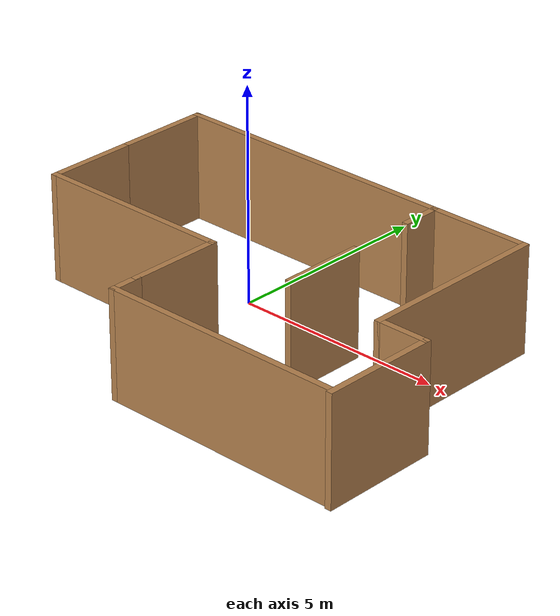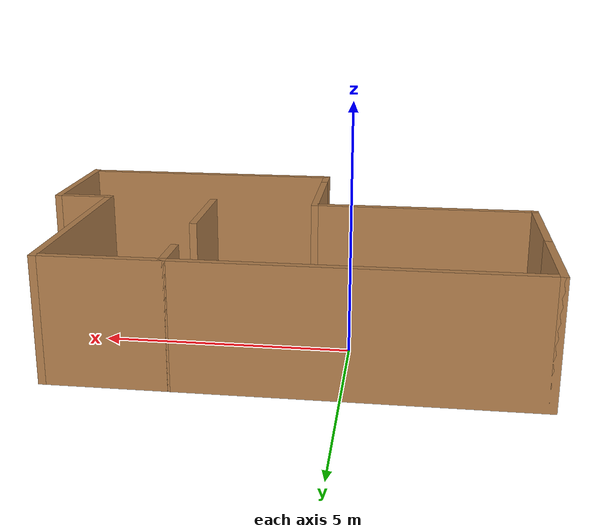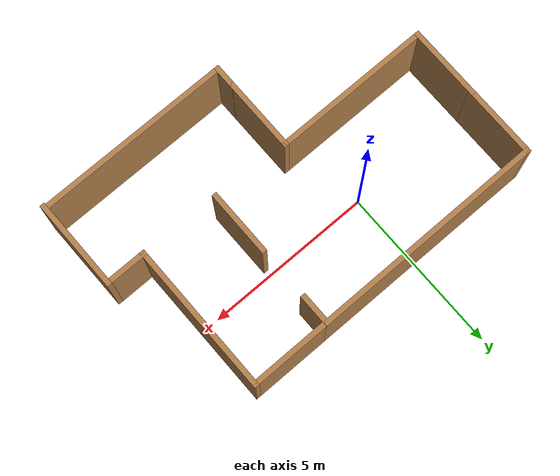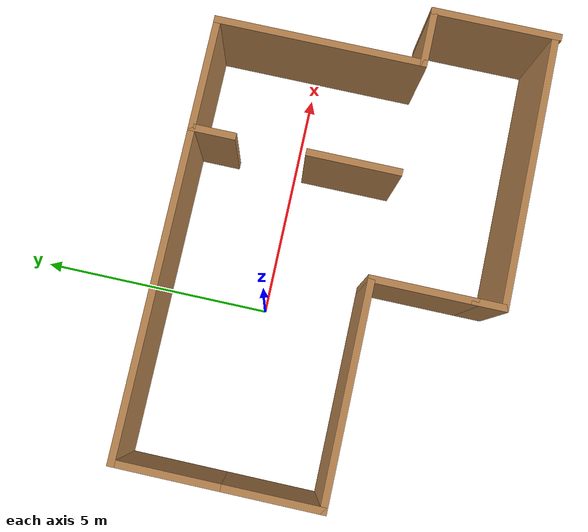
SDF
<?xml version='1.0'?>
<sdf version='1.6'>
  <model name='house'>
    <pose frame=''>1.485 -1.255 0 0 -0 0</pose>
    <link name='Wall_0'>
      <collision name='Wall_0_Collision'>
        <geometry>
          <box>
            <size>4.75 0.15 2.5</size>
          </box>
        </geometry>
        <pose frame=''>0 0 1.25 0 -0 0</pose>
      </collision>
      <visual name='Wall_0_Visual'>
        <pose frame=''>0 0 1.25 0 -0 0</pose>
        <geometry>
          <box>
            <size>4.75 0.15 2.5</size>
          </box>
        </geometry>
        <material>
          <script>
            <uri>file://media/materials/scripts/gazebo.material</uri>
            <name>Gazebo/Wood</name>
          </script>
          <ambient>1 1 1 1</ambient>
        </material>
        <meta>
          <layer>0</layer>
        </meta>
      </visual>
      <pose frame=''>-2.875 -0.725 0 0 -0 3.14159</pose>
    </link>
    <link name='Wall_1'>
      <collision name='Wall_1_Collision'>
        <geometry>
          <box>
            <size>2.25 0.15 2.5</size>
          </box>
        </geometry>
        <pose frame=''>0 0 1.25 0 -0 0</pose>
      </collision>
      <visual name='Wall_1_Visual'>
        <pose frame=''>0 0 1.25 0 -0 0</pose>
        <geometry>
          <box>
            <size>2.25 0.15 2.5</size>
          </box>
        </geometry>
        <material>
          <script>
            <uri>file://media/materials/scripts/gazebo.material</uri>
            <name>Gazebo/Wood</name>
          </script>
          <ambient>1 1 1 1</ambient>
        </material>
        <meta>
          <layer>0</layer>
        </meta>
      </visual>
      <pose frame=''>-5.175 0.325 0 0 -0 1.5708</pose>
    </link>
    <link name='Wall_16'>
      <collision name='Wall_16_Collision'>
        <geometry>
          <box>
            <size>2 0.15 2.5</size>
          </box>
        </geometry>
        <pose frame=''>0 0 1.25 0 -0 0</pose>
      </collision>
      <visual name='Wall_16_Visual'>
        <pose frame=''>0 0 1.25 0 -0 0</pose>
        <geometry>
          <box>
            <size>2 0.15 2.5</size>
          </box>
        </geometry>
        <material>
          <script>
            <uri>file://media/materials/scripts/gazebo.material</uri>
            <name>Gazebo/Wood</name>
          </script>
          <ambient>1 1 1 1</ambient>
        </material>
        <meta>
          <layer>0</layer>
        </meta>
      </visual>
      <pose frame=''>1.67473 0.096676 0 0 -0 -1.5708</pose>
    </link>
    <link name='Wall_18'>
      <collision name='Wall_18_Collision'>
        <geometry>
          <box>
            <size>2.25 0.15 2.5</size>
          </box>
        </geometry>
        <pose frame=''>0 0 1.25 0 -0 0</pose>
      </collision>
      <visual name='Wall_18_Visual'>
        <pose frame=''>0 0 1.25 0 -0 0</pose>
        <geometry>
          <box>
            <size>2.25 0.15 2.5</size>
          </box>
        </geometry>
        <material>
          <script>
            <uri>file://media/materials/scripts/gazebo.material</uri>
            <name>Gazebo/Wood</name>
          </script>
          <ambient>1 1 1 1</ambient>
        </material>
        <meta>
          <layer>0</layer>
        </meta>
      </visual>
      <pose frame=''>-0.575 -1.775 0 0 -0 -1.5708</pose>
    </link>
    <link name='Wall_20'>
      <collision name='Wall_20_Collision'>
        <geometry>
          <box>
            <size>0.75 0.15 2.5</size>
          </box>
        </geometry>
        <pose frame=''>0 0 1.25 0 -0 0</pose>
      </collision>
      <visual name='Wall_20_Visual'>
        <pose frame=''>0 0 1.25 0 -0 0</pose>
        <geometry>
          <box>
            <size>0.75 0.15 2.5</size>
          </box>
        </geometry>
        <material>
          <script>
            <uri>file://media/materials/scripts/gazebo.material</uri>
            <name>Gazebo/Wood</name>
          </script>
          <ambient>1 1 1 1</ambient>
        </material>
        <meta>
          <layer>0</layer>
        </meta>
      </visual>
      <pose frame=''>-0.575 -3.125 0 0 -0 -1.5708</pose>
    </link>
    <link name='Wall_21'>
      <collision name='Wall_21_Collision'>
        <geometry>
          <box>
            <size>5.75 0.15 2.5</size>
          </box>
        </geometry>
        <pose frame=''>0 0 1.25 0 -0 0</pose>
      </collision>
      <visual name='Wall_21_Visual'>
        <pose frame=''>0 0 1.25 0 -0 0</pose>
        <geometry>
          <box>
            <size>5.75 0.15 2.5</size>
          </box>
        </geometry>
        <material>
          <script>
            <uri>file://media/materials/scripts/gazebo.material</uri>
            <name>Gazebo/Wood</name>
          </script>
          <ambient>1 1 1 1</ambient>
        </material>
        <meta>
          <layer>0</layer>
        </meta>
      </visual>
      <pose frame=''>2.225 -3.425 0 0 -0 0</pose>
    </link>
    <link name='Wall_23'>
      <collision name='Wall_23_Collision'>
        <geometry>
          <box>
            <size>2.75 0.15 2.5</size>
          </box>
        </geometry>
        <pose frame=''>0 0 1.25 0 -0 0</pose>
      </collision>
      <visual name='Wall_23_Visual'>
        <pose frame=''>0 0 1.25 0 -0 0</pose>
        <geometry>
          <box>
            <size>2.75 0.15 2.5</size>
          </box>
        </geometry>
        <material>
          <script>
            <uri>file://media/materials/scripts/gazebo.material</uri>
            <name>Gazebo/Wood</name>
          </script>
          <ambient>1 1 1 1</ambient>
        </material>
        <meta>
          <layer>0</layer>
        </meta>
      </visual>
      <pose frame=''>5.175 -2.175 0 0 -0 -1.5708</pose>
    </link>
    <link name='Wall_28'>
      <collision name='Wall_28_Collision'>
        <geometry>
          <box>
            <size>2.5 0.15 2.5</size>
          </box>
        </geometry>
        <pose frame=''>0 0 1.25 0 -0 0</pose>
      </collision>
      <visual name='Wall_28_Visual'>
        <pose frame=''>0 0 1.25 0 -0 0</pose>
        <geometry>
          <box>
            <size>2.5 0.15 2.5</size>
          </box>
        </geometry>
        <material>
          <script>
            <uri>file://media/materials/scripts/gazebo.material</uri>
            <name>Gazebo/Wood</name>
          </script>
          <ambient>1 1 1 1</ambient>
        </material>
        <meta>
          <layer>0</layer>
        </meta>
      </visual>
      <pose frame=''>2.85 3.475 0 0 -0 0</pose>
    </link>
    <link name='Wall_29'>
      <collision name='Wall_29_Collision'>
        <geometry>
          <box>
            <size>4.5 0.15 2.5</size>
          </box>
        </geometry>
        <pose frame=''>0 0 1.25 0 -0 0</pose>
      </collision>
      <visual name='Wall_29_Visual'>
        <pose frame=''>0 0 1.25 0 -0 0</pose>
        <geometry>
          <box>
            <size>4.5 0.15 2.5</size>
          </box>
        </geometry>
        <material>
          <script>
            <uri>file://media/materials/scripts/gazebo.material</uri>
            <name>Gazebo/Wood</name>
          </script>
          <ambient>1 1 1 1</ambient>
        </material>
        <meta>
          <layer>0</layer>
        </meta>
      </visual>
      <pose frame=''>4.025 1.3 0 0 -0 -1.5708</pose>
    </link>
    <link name='Wall_30'>
      <collision name='Wall_30_Collision'>
        <geometry>
          <box>
            <size>1.3 0.15 2.5</size>
          </box>
        </geometry>
        <pose frame=''>0 0 1.25 0 -0 0</pose>
      </collision>
      <visual name='Wall_30_Visual'>
        <pose frame=''>0 0 1.25 0 -0 0</pose>
        <geometry>
          <box>
            <size>1.3 0.15 2.5</size>
          </box>
        </geometry>
        <material>
          <script>
            <uri>file://media/materials/scripts/gazebo.material</uri>
            <name>Gazebo/Wood</name>
          </script>
          <ambient>1 1 1 1</ambient>
        </material>
        <meta>
          <layer>0</layer>
        </meta>
      </visual>
      <pose frame=''>4.6 -0.875 0 0 -0 0</pose>
    </link>
    <link name='Wall_5'>
      <collision name='Wall_5_Collision'>
        <geometry>
          <box>
            <size>2.25 0.15 2.5</size>
          </box>
        </geometry>
        <pose frame=''>0 0 1.25 0 -0 0</pose>
      </collision>
      <visual name='Wall_5_Visual'>
        <pose frame=''>0 0 1.25 0 -0 0</pose>
        <geometry>
          <box>
            <size>2.25 0.15 2.5</size>
          </box>
        </geometry>
        <material>
          <script>
            <uri>file://media/materials/scripts/gazebo.material</uri>
            <name>Gazebo/Wood</name>
          </script>
          <ambient>1 1 1 1</ambient>
        </material>
        <meta>
          <layer>0</layer>
        </meta>
      </visual>
      <pose frame=''>-5.175 2.425 0 0 -0 1.5708</pose>
    </link>
    <link name='Wall_6'>
      <collision name='Wall_6_Collision'>
        <geometry>
          <box>
            <size>7 0.15 2.5</size>
          </box>
        </geometry>
        <pose frame=''>0 0 1.25 0 -0 0</pose>
      </collision>
      <visual name='Wall_6_Visual'>
        <pose frame=''>0 0 1.25 0 -0 0</pose>
        <geometry>
          <box>
            <size>7 0.15 2.5</size>
          </box>
        </geometry>
        <material>
          <script>
            <uri>file://media/materials/scripts/gazebo.material</uri>
            <name>Gazebo/Wood</name>
          </script>
          <ambient>1 1 1 1</ambient>
        </material>
        <meta>
          <layer>0</layer>
        </meta>
      </visual>
      <pose frame=''>-1.75 3.475 0 0 -0 0</pose>
    </link>
    <link name='Wall_7'>
      <collision name='Wall_7_Collision'>
        <geometry>
          <box>
            <size>1 0.15 2.5</size>
          </box>
        </geometry>
        <pose frame=''>0 0 1.25 0 -0 0</pose>
      </collision>
      <visual name='Wall_7_Visual'>
        <pose frame=''>0 0 1.25 0 -0 0</pose>
        <geometry>
          <box>
            <size>1 0.15 2.5</size>
          </box>
        </geometry>
        <material>
          <script>
            <uri>file://media/materials/scripts/gazebo.material</uri>
            <name>Gazebo/Wood</name>
          </script>
          <ambient>1 1 1 1</ambient>
        </material>
        <meta>
          <layer>0</layer>
        </meta>
      </visual>
      <pose frame=''>1.675 3.05 0 0 -0 -1.5708</pose>
    </link>
    <static>1</static>
  </model>
</sdf>
